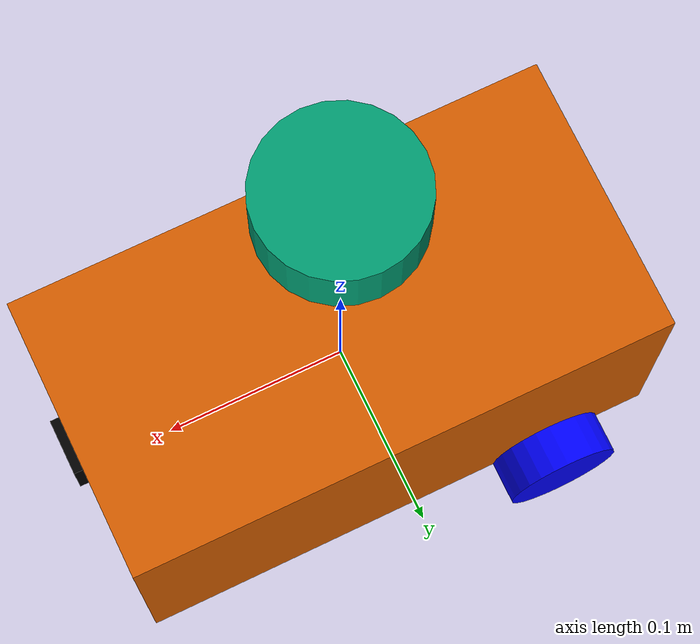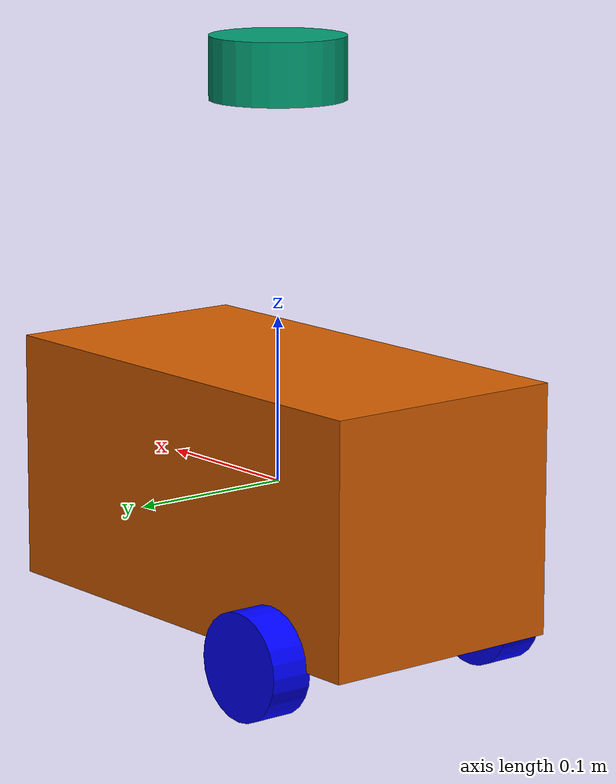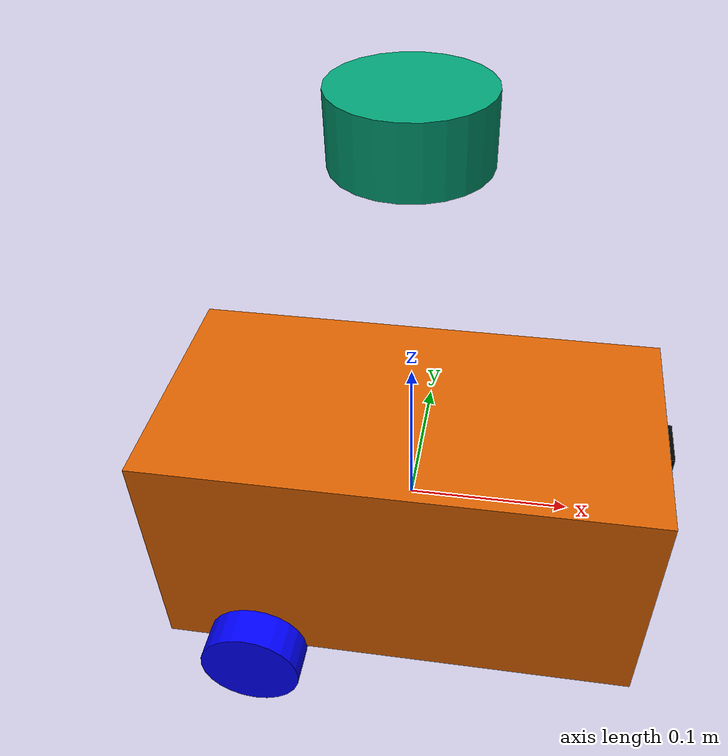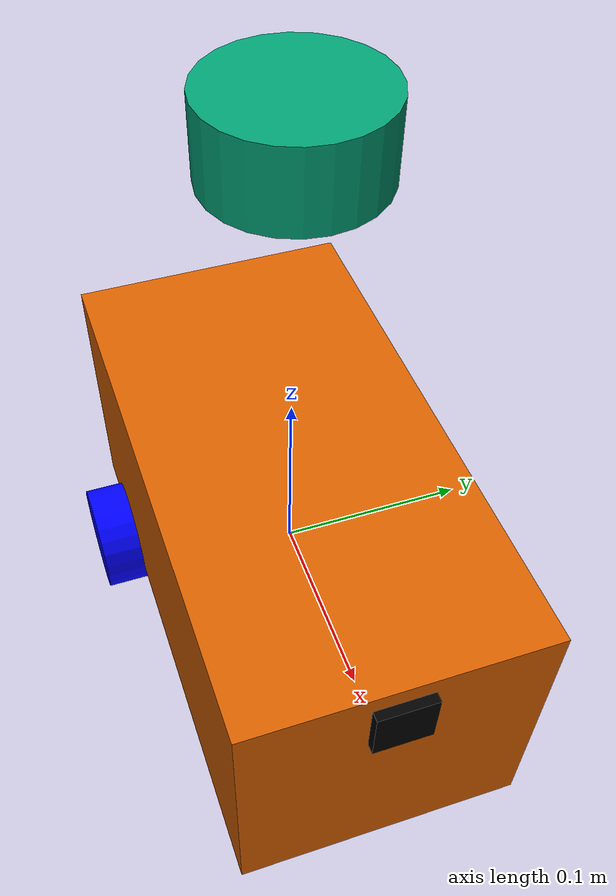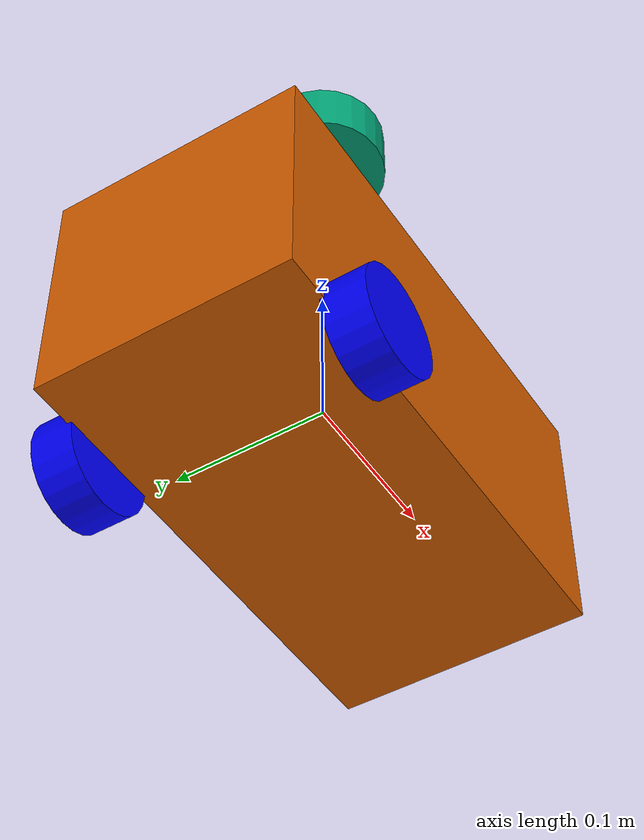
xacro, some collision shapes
<?xml version="1.0"?>

<!--=========================starting xacros================================-->
<robot xmlns:xacro="http://www.ros.org/wiki/xacro" name="prototype">
<xacro:include filename="$(find prototype)/sambot/wheel.xacro"/>
<xacro:include filename="$(find prototype)/sambot/lidar.xacro"/>
<xacro:include filename="$(find prototype)/sambot/joint_macros.xacro"/>
<xacro:include filename="$(find prototype)/sambot/link_macros.xacro"/>
<xacro:include filename="$(find prototype)/sambot/hardware_interface.xacro"/>
<xacro:include filename="$(find prototype)/sambot/camera.xacro"/>

<!--=========================xacro:properties=============================-->
    <xacro:property name="body_length" value="0.3"/>
    <xacro:property name="body_width" value="0.155"/>
    <xacro:property name="body_height" value="0.01"/>

                              <!-- end of xacros-->

  <!--=====================Base-Footprint and base_link link=================-->
  <!-- BASE LINK-->
  <link name="base_link">
  <visual>
        <geometry>
        <box size="0.3 0.155 0.15"/>
        </geometry>
       </visual>
  </link>

  <joint name="base_joint" type="fixed">
    <parent link="base_link"/>
    <child link="base_footprint"/>
    <origin xyz="0.0 0.0 -0.091" rpy="0 0 0"/>
</joint>

<link name="base_footprint">
</link>

 <joint name="caster_wheel_joint" type="fixed">
  <parent link="base_link"/>
  <child link="caster_wheel"/>
  <axis xyz="0 0 0"/>
  <origin xyz="0.125 0.0 -0.038" rpy="0 0 0"/>
 </joint>

        <link name="caster_wheel">
            <visual>
                <origin xyz="0.0 0.0 0.0" rpy="0.0 0.0 0.0"/>
                <geometry>
                 <sphere radius="0.025"/>
                </geometry>
                <material name="blue">
                    <color rgba="0.0 0.0 1.0 1.0"/>
                </material>
            </visual>
 </link>
</robot>

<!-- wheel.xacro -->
<!--=========================starting xacros================================-->
<robot xmlns:xacro="http://www.ros.org/wiki/xacro" name="prototype">
<xacro:include filename="$(find prototype)/sambot/joint_macros.xacro"/>

<!--==========================xacro for wheel=============================-->
    <xacro:macro name="wheel" params="wheel_name">
        <link name="${wheel_name}">
            <visual>
                <origin xyz="0.0 0.0 0.0" rpy="1.57 0.0 0.0"/>
                <geometry>
                 <cylinder radius="${wheel_radius}" length="${wheel_length}"/>
                </geometry>
                <material name="blue">
                    <color rgba="0.0 0.0 1.0 1.0"/>
                </material>
            </visual>
            <collision>
                <origin xyz="0.0 0.0 0.0" rpy="0.0 1.5707 0.0"/>
                <geometry>
                    <cylinder radius="${wheel_radius}" length="${wheel_length}"/>
                </geometry>
            </collision>
            <inertial>
                <origin rpy="0 0 0" xyz="0 0 0"/>
                <mass value="0.034"/>
              <inertia ixx="1.37e-5" ixy="0" ixz="0" iyy="1.37e-5" iyz="0" izz="3.41e-6"/>
              </inertial>
              <dynamics damping="0.5" friction="0.1"/>

        </link>
   </xacro:macro>

   <!-- *********************wheel links and joints***************************************-->

<xacro:joint_wheel name="back_right_wheel_joint" origin="-0.0900 -0.088 -0.075"
parent="base_link" child="back_right_wheel"/>

<xacro:wheel  wheel_name="back_right_wheel"/>

<xacro:joint_wheel name="back_left_wheel_joint" origin="-0.0900 0.088 -0.075"
parent="base_link" child="back_left_wheel"/>

<xacro:wheel  wheel_name="back_left_wheel"/>

</robot>

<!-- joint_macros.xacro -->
<robot xmlns:xacro="http://www.ros.org/wiki/xacro" name="prototype">

    <xacro:property name="wheel_radius" value="0.032"/>
    <xacro:property name="wheel_length" value="0.026"/>

   <!--===============xacro for continuous joints=========================-->
    <xacro:macro name="joint_wheel" params="name origin parent child">
        <joint name="${name}" type="continuous">
            <origin xyz="${origin}" rpy="0.0 0.0 0.0"/>
            <parent link="${parent}"/>
            <child link="${child}"/>
            <axis xyz="0.0 1.0 0.0"/>
            <limit effort="200" velocity="2.0"/>
            <joint_properties damping="1.1" friction="1.0"/>
        </joint>
    </xacro:macro>

  <!--===================== xacro for fixed joints===========================-->
  <xacro:macro name="fixed_joint" params="name origin parent child">
    <joint name="${name}" type="fixed">
        <origin xyz="${origin}" rpy="0.0 0.0 0.0"/>
        <parent link="${parent}"/>
        <child link="${child}"/>
    </joint>
  </xacro:macro>

</robot>

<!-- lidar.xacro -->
<!--=========================starting xacros================================-->
<robot xmlns:xacro="http://www.ros.org/wiki/xacro" name="prototype">

<link name="laser_scan_frame">
    <visual>
        <origin xyz="0 0 0" rpy="0.0 0.0 0.0"/>
        <geometry>
           <mesh filename="package://prototype/meshes/sensors/rplidar.dae" scale="1.0 1.0 1.0"/>
        </geometry>
       </visual>
       <collision>
           <origin rpy="0 0 0" xyz="0 0 0"/>
          <geometry>
               <cylinder radius="0.0408" length="0.037493"/>
          </geometry>
        </collision>
        <inertial>
           <mass value="0.01"/>
           <origin rpy="0 0 0" xyz="0 0 0.0204"/>
           <inertia ixx="6.066578520833334e-06" ixy="0" ixz="0" iyy="6.072950163333333e-06" iyz="0" izz="9.365128684166666e-06"/>
         </inertial>
</link>

<joint name="laser_scan_frame_joint" type="fixed">
    <origin xyz="0.0 0.0 0.248" rpy="0.0 0.0 0.0"/>
    <parent link="base_link"/>
    <child link="laser_scan_frame"/>
    <axis xyz="0 0 1"/>
    <limit lower="-0.1" upper="0.0" effort="20.0" velocity="2.0"/>
    <dynamics damping="0.1"  friction="0.01"/>
</joint>

</robot>

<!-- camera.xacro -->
<!--=========================starting xacros================================-->
<robot xmlns:xacro="http://www.ros.org/wiki/xacro" name="prototype">

<link name="camera_link">
    <visual>
        <origin xyz="0 0 0.0" rpy="0.0 0.0 0.0"/>
        <geometry>
        <box size="0.010 0.03 0.03"/>
        </geometry>
        <material name="black">
          <color rgba="0.0 0.0 0.0 1.0"/>
        </material>
       </visual>
</link>

<joint name="camera_joint" type="fixed">
    <origin xyz="0.15 0.0 0.05" rpy="0.0 0.0 0.0"/>
    <parent link="base_link"/>
    <child link="camera_link"/>
</joint>

<joint name="camera_optical_joint" type="fixed">
    <origin xyz="0.0 0.0 0.0" rpy="-1.57 0.0 -1.57"/>
    <parent link="camera_link"/>
    <child link="camera_link_optical"/>
</joint>
<link name="camera_link_optical">
</link>

</robot>
